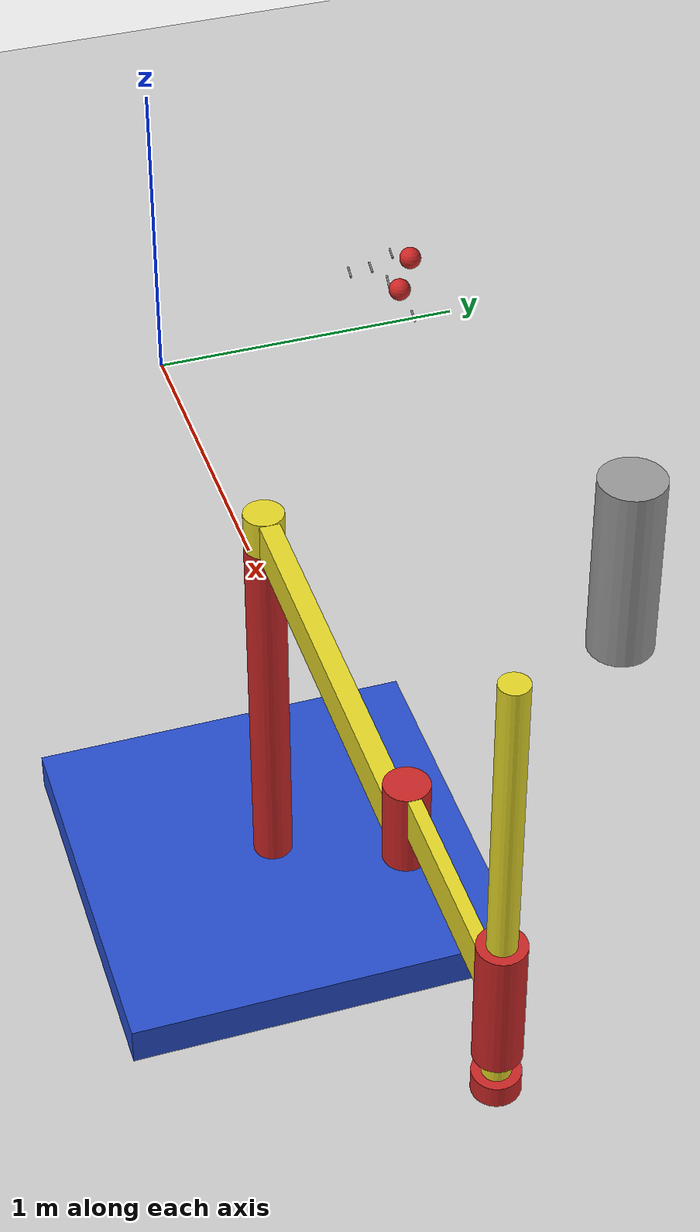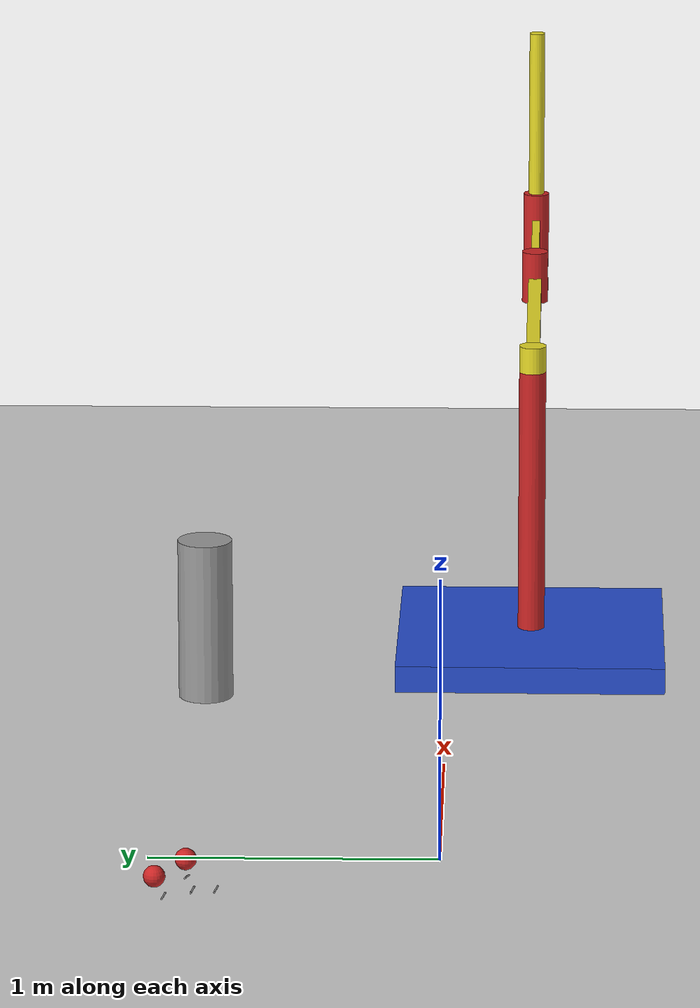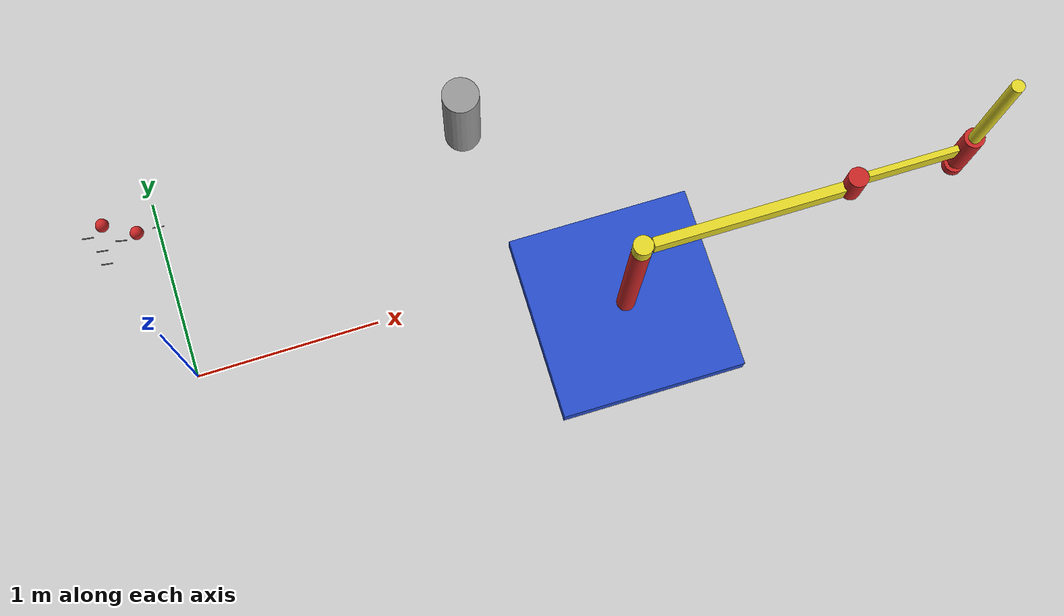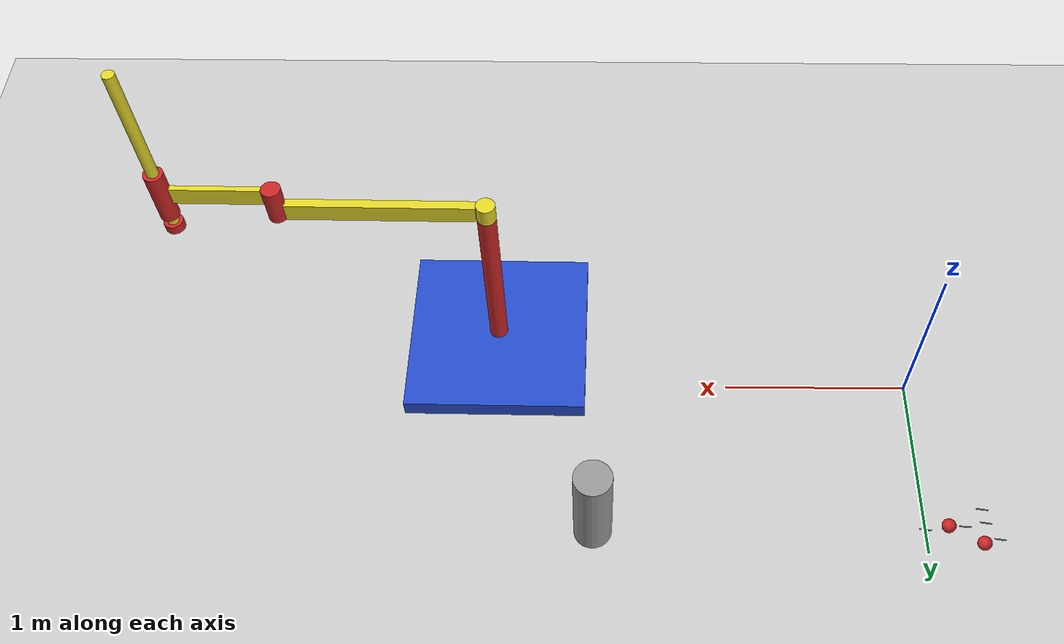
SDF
<sdf version="1.7">
 <world name="default">
  <light name="sun" type="directional">
   <pose>0 0 10 0 -0 0</pose>
   <diffuse>0.8 0.8 0.8 1</diffuse>
   <specular>0.2 0.2 0.2 1</specular>
   <attenuation>
    <range>1000</range>
    <constant>0.9</constant>
    <linear>0.01</linear>
    <quadratic>0.001</quadratic>
   </attenuation>
   <direction>-0.5 0.1 -0.9</direction>
   <spot><inner_angle>0</inner_angle><outer_angle>0</outer_angle><falloff>0</falloff></spot>
  </light>
  <model name="ground_plane">
   <static>1</static>
   <link name="link">
    <collision name="collision">
     <geometry><plane><normal>0 0 1</normal><size>100 100</size></plane></geometry>
     <surface><friction><ode><mu>100</mu><mu2>50</mu2></ode></friction></surface>
    </collision>
    <visual name="visual">
     <cast_shadows>0</cast_shadows>
     <geometry><plane><normal>0 0 1</normal><size>100 100</size></plane></geometry>
     <material>
      <script><uri>file://media/materials/scripts/gazebo.material</uri><name>Gazebo/Grey</name></script>
     </material>
    </visual>
   </link>
  </model>
  <gravity>0 0 -9.8</gravity>
  <magnetic_field>6e-06 2.3e-05 -4.2e-05</magnetic_field>
  <atmosphere type="adiabatic"/>
  <physics type="ode">
   <max_step_size>0.001</max_step_size>
   <real_time_factor>1</real_time_factor>
   <real_time_update_rate>1000</real_time_update_rate>
  </physics>
  <scene><ambient>0.4 0.4 0.4 1</ambient><background>0.7 0.7 0.7 1</background><shadows>1</shadows></scene>
  <audio><device>default</device></audio>
  <spherical_coordinates>
   <surface_model>EARTH_WGS84</surface_model>
   <latitude_deg>0</latitude_deg>
   <longitude_deg>0</longitude_deg>
   <elevation>0</elevation>
   <heading_deg>0</heading_deg>
  </spherical_coordinates>
  <model name="cricket_ball">
   <link name="link">
    <pose>0 0 0.0375 0 -0 0</pose>
    <inertial>
     <mass>0.1467</mass>
     <inertia>
      <ixx>8.25187e-05</ixx>
      <ixy>0</ixy>
      <ixz>0</ixz>
      <iyy>8.25187e-05</iyy>
      <iyz>0</iyz>
      <izz>8.25187e-05</izz>
     </inertia>
    </inertial>
    <collision name="collision">
     <geometry><sphere><radius>0.0375</radius></sphere></geometry>
     <surface>
      <contact>
       <poissons_ratio>0.347</poissons_ratio>
       <elastic_modulus>8.8e+09</elastic_modulus>
       <ode><kp>100000</kp><kd>100</kd><max_vel>100</max_vel><min_depth>0.001</min_depth></ode>
      </contact>
      <friction>
       <torsional>
        <coefficient>1</coefficient>
        <use_patch_radius>0</use_patch_radius>
        <surface_radius>0.01</surface_radius>
       </torsional>
      </friction>
     </surface>
    </collision>
    <visual name="visual">
     <geometry><sphere><radius>0.0375</radius></sphere></geometry>
     <material>
      <script><uri>file://media/materials/scripts/gazebo.material</uri><name>Gazebo/Red</name></script>
     </material>
    </visual>
    <velocity_decay><linear>0</linear><angular>0.005</angular></velocity_decay>
   </link>
   <pose>-0.122777 0.864227 0.00437 0.057605 0.131183 -0.011294</pose>
  </model>
  <model name="cricket_ball_clone">
   <link name="link">
    <pose>0 0 0.0375 0 -0 0</pose>
    <inertial>
     <mass>0.1467</mass>
     <inertia>
      <ixx>8.25187e-05</ixx>
      <ixy>0</ixy>
      <ixz>0</ixz>
      <iyy>8.25187e-05</iyy>
      <iyz>0</iyz>
      <izz>8.25187e-05</izz>
     </inertia>
    </inertial>
    <collision name="collision">
     <geometry><sphere><radius>0.0375</radius></sphere></geometry>
     <surface>
      <contact>
       <poissons_ratio>0.347</poissons_ratio>
       <elastic_modulus>8.8e+09</elastic_modulus>
       <ode><kp>100000</kp><kd>100</kd><max_vel>100</max_vel><min_depth>0.001</min_depth></ode>
      </contact>
      <friction>
       <torsional>
        <coefficient>1</coefficient>
        <use_patch_radius>0</use_patch_radius>
        <surface_radius>0.01</surface_radius>
       </torsional>
      </friction>
     </surface>
    </collision>
    <visual name="visual">
     <geometry><sphere><radius>0.0375</radius></sphere></geometry>
     <material>
      <script><uri>file://media/materials/scripts/gazebo.material</uri><name>Gazebo/Red</name></script>
     </material>
    </visual>
    <velocity_decay><linear>0</linear><angular>0.005</angular></velocity_decay>
   </link>
   <pose>-0.289198 0.958912 0.003986 0 -0 0</pose>
  </model>
  <model name="simple_arm">
   <link name="arm_base">
    <inertial>
     <pose>0 0 0.00099 0 -0 0</pose>
     <inertia><ixx>1.11</ixx><ixy>0</ixy><ixz>0</ixz><iyy>100.11</iyy><iyz>0</iyz><izz>1.01</izz></inertia>
     <mass>101</mass>
    </inertial>
    <collision name="arm_base_geom">
     <pose>0 0 0.05 0 -0 0</pose>
     <geometry><box><size>1 1 0.1</size></box></geometry>
    </collision>
    <visual name="arm_base_geom_visual">
     <pose>0 0 0.05 0 -0 0</pose>
     <geometry><box><size>1 1 0.1</size></box></geometry>
     <material>
      <script><uri>file://media/materials/scripts/gazebo.material</uri><name>Gazebo/Blue</name></script>
     </material>
    </visual>
    <collision name="arm_base_geom_arm_trunk">
     <pose>0 0 0.6 0 -0 0</pose>
     <geometry><cylinder><radius>0.05</radius><length>1</length></cylinder></geometry>
    </collision>
    <visual name="arm_base_geom_arm_trunk_visual">
     <pose>0 0 0.6 0 -0 0</pose>
     <geometry><cylinder><radius>0.05</radius><length>1</length></cylinder></geometry>
     <material>
      <script><uri>file://media/materials/scripts/gazebo.material</uri><name>Gazebo/Red</name></script>
     </material>
    </visual>
   </link>
   <link name="arm_shoulder_pan">
    <pose>0 0 1.1 0 -0 0</pose>
    <inertial>
     <pose>0.045455 0 0 0 -0 0</pose>
     <inertia><ixx>0.011</ixx><ixy>0</ixy><ixz>0</ixz><iyy>0.0225</iyy><iyz>0</iyz><izz>0.0135</izz></inertia>
     <mass>1.1</mass>
    </inertial>
    <collision name="arm_shoulder_pan_geom">
     <pose>0 0 0.05 0 -0 0</pose>
     <geometry><cylinder><radius>0.05</radius><length>0.1</length></cylinder></geometry>
    </collision>
    <visual name="arm_shoulder_pan_geom_visual">
     <pose>0 0 0.05 0 -0 0</pose>
     <geometry><cylinder><radius>0.05</radius><length>0.1</length></cylinder></geometry>
     <material>
      <script><uri>file://media/materials/scripts/gazebo.material</uri><name>Gazebo/Yellow</name></script>
     </material>
    </visual>
    <collision name="arm_shoulder_pan_geom_arm_shoulder">
     <pose>0.55 0 0.05 0 -0 0</pose>
     <geometry><box><size>1 0.05 0.1</size></box></geometry>
    </collision>
    <visual name="arm_shoulder_pan_geom_arm_shoulder_visual">
     <pose>0.55 0 0.05 0 -0 0</pose>
     <geometry><box><size>1 0.05 0.1</size></box></geometry>
     <material>
      <script><uri>file://media/materials/scripts/gazebo.material</uri><name>Gazebo/Yellow</name></script>
     </material>
    </visual>
   </link>
   <link name="arm_elbow_pan">
    <pose>1.05 0 1.1 0 -0 0</pose>
    <inertial>
     <pose>0.0875 0 0.083333 0 -0 0</pose>
     <inertia>
      <ixx>0.031</ixx>
      <ixy>0</ixy>
      <ixz>0.005</ixz>
      <iyy>0.07275</iyy>
      <iyz>0</iyz>
      <izz>0.04475</izz>
     </inertia>
     <mass>1.2</mass>
    </inertial>
    <collision name="arm_elbow_pan_geom">
     <pose>0 0 0.1 0 -0 0</pose>
     <geometry><cylinder><radius>0.05</radius><length>0.2</length></cylinder></geometry>
    </collision>
    <visual name="arm_elbow_pan_geom_visual">
     <pose>0 0 0.1 0 -0 0</pose>
     <geometry><cylinder><radius>0.05</radius><length>0.2</length></cylinder></geometry>
     <material>
      <script><uri>file://media/materials/scripts/gazebo.material</uri><name>Gazebo/Red</name></script>
     </material>
    </visual>
    <collision name="arm_elbow_pan_geom_arm_elbow">
     <pose>0.3 0 0.15 0 -0 0</pose>
     <geometry><box><size>0.5 0.03 0.1</size></box></geometry>
    </collision>
    <visual name="arm_elbow_pan_geom_arm_elbow_visual">
     <pose>0.3 0 0.15 0 -0 0</pose>
     <geometry><box><size>0.5 0.03 0.1</size></box></geometry>
     <material>
      <script><uri>file://media/materials/scripts/gazebo.material</uri><name>Gazebo/Yellow</name></script>
     </material>
    </visual>
    <collision name="arm_elbow_pan_geom_arm_wrist">
     <pose>0.55 0 0.15 0 -0 0</pose>
     <geometry><cylinder><radius>0.05</radius><length>0.3</length></cylinder></geometry>
    </collision>
    <visual name="arm_elbow_pan_geom_arm_wrist_visual">
     <pose>0.55 0 0.15 0 -0 0</pose>
     <geometry><cylinder><radius>0.05</radius><length>0.3</length></cylinder></geometry>
     <material>
      <script><uri>file://media/materials/scripts/gazebo.material</uri><name>Gazebo/Red</name></script>
     </material>
    </visual>
   </link>
   <link name="arm_wrist_lift">
    <pose>1.6 0 1.05 0 -0 0</pose>
    <inertial>
     <inertia><ixx>0.01</ixx><ixy>0</ixy><ixz>0</ixz><iyy>0.01</iyy><iyz>0</iyz><izz>0.001</izz></inertia>
     <mass>0.1</mass>
    </inertial>
    <collision name="arm_wrist_lift_geom">
     <pose>0 0 0.5 0 -0 0</pose>
     <geometry><cylinder><radius>0.03</radius><length>1</length></cylinder></geometry>
    </collision>
    <visual name="arm_wrist_lift_geom_visual">
     <pose>0 0 0.5 0 -0 0</pose>
     <geometry><cylinder><radius>0.03</radius><length>1</length></cylinder></geometry>
     <material>
      <script><uri>file://media/materials/scripts/gazebo.material</uri><name>Gazebo/Yellow</name></script>
     </material>
    </visual>
   </link>
   <link name="arm_wrist_roll">
    <pose>1.6 0 1 0 -0 0</pose>
    <inertial>
     <inertia><ixx>0.01</ixx><ixy>0</ixy><ixz>0</ixz><iyy>0.01</iyy><iyz>0</iyz><izz>0.001</izz></inertia>
     <mass>0.1</mass>
    </inertial>
    <collision name="arm_wrist_roll_geom">
     <pose>0 0 0.025 0 -0 0</pose>
     <geometry><cylinder><radius>0.05</radius><length>0.05</length></cylinder></geometry>
    </collision>
    <visual name="arm_wrist_roll_geom_visual">
     <pose>0 0 0.025 0 -0 0</pose>
     <geometry><cylinder><radius>0.05</radius><length>0.05</length></cylinder></geometry>
     <material>
      <script><uri>file://media/materials/scripts/gazebo.material</uri><name>Gazebo/Red</name></script>
     </material>
    </visual>
   </link>
   <joint name="arm_shoulder_pan_joint" type="revolute">
    <parent>arm_base</parent>
    <child>arm_shoulder_pan</child>
    <axis>
     <dynamics>
      <damping>1</damping>
      <friction>0</friction>
      <spring_reference>0</spring_reference>
      <spring_stiffness>0</spring_stiffness>
     </dynamics>
     <xyz expressed_in="__model__">0 0 1</xyz>
     <limit><lower>-1e+16</lower><upper>1e+16</upper></limit>
    </axis>
   </joint>
   <joint name="arm_elbow_pan_joint" type="revolute">
    <parent>arm_shoulder_pan</parent>
    <child>arm_elbow_pan</child>
    <axis>
     <dynamics>
      <damping>1</damping>
      <friction>0</friction>
      <spring_reference>0</spring_reference>
      <spring_stiffness>0</spring_stiffness>
     </dynamics>
     <xyz expressed_in="__model__">0 0 1</xyz>
     <limit><lower>-1e+16</lower><upper>1e+16</upper></limit>
    </axis>
   </joint>
   <joint name="arm_wrist_lift_joint" type="prismatic">
    <parent>arm_elbow_pan</parent>
    <child>arm_wrist_lift</child>
    <axis>
     <dynamics>
      <damping>1</damping>
      <friction>0</friction>
      <spring_reference>0</spring_reference>
      <spring_stiffness>0</spring_stiffness>
     </dynamics>
     <limit><lower>-0.8</lower><upper>0.1</upper></limit>
     <xyz expressed_in="__model__">0 0 1</xyz>
    </axis>
   </joint>
   <joint name="arm_wrist_roll_joint" type="revolute">
    <parent>arm_wrist_lift</parent>
    <child>arm_wrist_roll</child>
    <axis>
     <dynamics>
      <damping>1</damping>
      <friction>0</friction>
      <spring_reference>0</spring_reference>
      <spring_stiffness>0</spring_stiffness>
     </dynamics>
     <limit><lower>-2.99999</lower><upper>2.99999</upper></limit>
     <xyz expressed_in="__model__">0 0 1</xyz>
    </axis>
   </joint>
   <pose>2.29434 -0.31059 0.004945 -0.000113 2e-06 -0.009006</pose>
  </model>
  <model name="metal_peg">
   <link name="link">
    <pose>0 0 0.031 0 -0 0</pose>
    <inertial>
     <mass>0.0121</mass>
     <inertia>
      <ixx>3.90898e-06</ixx>
      <ixy>0</ixy>
      <ixz>0</ixz>
      <iyy>3.90898e-06</iyy>
      <iyz>0</iyz>
      <izz>6.58845e-08</izz>
     </inertia>
    </inertial>
    <collision name="collision">
     <geometry><cylinder><radius>0.0033</radius><length>0.062</length></cylinder></geometry>
     <surface>
      <contact>
       <poissons_ratio>0.305</poissons_ratio>
       <elastic_modulus>2e+11</elastic_modulus>
       <ode><kp>100000</kp><kd>100</kd><max_vel>100</max_vel><min_depth>0.001</min_depth></ode>
      </contact>
      <friction>
       <torsional>
        <coefficient>1</coefficient>
        <use_patch_radius>0</use_patch_radius>
        <surface_radius>0.01</surface_radius>
       </torsional>
      </friction>
     </surface>
    </collision>
    <visual name="visual">
     <geometry><cylinder><radius>0.0033</radius><length>0.062</length></cylinder></geometry>
     <material>
      <script><uri>file://media/materials/scripts/gazebo.material</uri><name>Gazebo/Grey</name></script>
     </material>
    </visual>
   </link>
   <pose>0.02984 0.866349 0.007297 1.41795 -1.31737 -1.54887</pose>
  </model>
  <model name="metal_peg_0">
   <link name="link">
    <pose>0 0 0.031 0 -0 0</pose>
    <inertial>
     <mass>0.0121</mass>
     <inertia>
      <ixx>3.90898e-06</ixx>
      <ixy>0</ixy>
      <ixz>0</ixz>
      <iyy>3.90898e-06</iyy>
      <iyz>0</iyz>
      <izz>6.58845e-08</izz>
     </inertia>
    </inertial>
    <collision name="collision">
     <geometry><cylinder><radius>0.0033</radius><length>0.062</length></cylinder></geometry>
     <surface>
      <contact>
       <poissons_ratio>0.305</poissons_ratio>
       <elastic_modulus>2e+11</elastic_modulus>
       <ode><kp>100000</kp><kd>100</kd><max_vel>100</max_vel><min_depth>0.001</min_depth></ode>
      </contact>
      <friction>
       <torsional>
        <coefficient>1</coefficient>
        <use_patch_radius>0</use_patch_radius>
        <surface_radius>0.01</surface_radius>
       </torsional>
      </friction>
     </surface>
    </collision>
    <visual name="visual">
     <geometry><cylinder><radius>0.0033</radius><length>0.062</length></cylinder></geometry>
     <material>
      <script><uri>file://media/materials/scripts/gazebo.material</uri><name>Gazebo/Grey</name></script>
     </material>
    </visual>
   </link>
   <pose>-0.295231 0.823922 0.007299 -1.5708 -1.39301 1.42608</pose>
  </model>
  <model name="metal_peg_1">
   <link name="link">
    <pose>0 0 0.031 0 -0 0</pose>
    <inertial>
     <mass>0.0121</mass>
     <inertia>
      <ixx>3.90898e-06</ixx>
      <ixy>0</ixy>
      <ixz>0</ixz>
      <iyy>3.90898e-06</iyy>
      <iyz>0</iyz>
      <izz>6.58845e-08</izz>
     </inertia>
    </inertial>
    <collision name="collision">
     <geometry><cylinder><radius>0.0033</radius><length>0.062</length></cylinder></geometry>
     <surface>
      <contact>
       <poissons_ratio>0.305</poissons_ratio>
       <elastic_modulus>2e+11</elastic_modulus>
       <ode><kp>100000</kp><kd>100</kd><max_vel>100</max_vel><min_depth>0.001</min_depth></ode>
      </contact>
      <friction>
       <torsional>
        <coefficient>1</coefficient>
        <use_patch_radius>0</use_patch_radius>
        <surface_radius>0.01</surface_radius>
       </torsional>
      </friction>
     </surface>
    </collision>
    <visual name="visual">
     <geometry><cylinder><radius>0.0033</radius><length>0.062</length></cylinder></geometry>
     <material>
      <script><uri>file://media/materials/scripts/gazebo.material</uri><name>Gazebo/Grey</name></script>
     </material>
    </visual>
   </link>
   <pose>-0.288125 0.745057 0.007299 -1.5708 -1.39301 1.42608</pose>
  </model>
  <model name="metal_peg_2">
   <link name="link">
    <pose>0 0 0.031 0 -0 0</pose>
    <inertial>
     <mass>0.0121</mass>
     <inertia>
      <ixx>3.90898e-06</ixx>
      <ixy>0</ixy>
      <ixz>0</ixz>
      <iyy>3.90898e-06</iyy>
      <iyz>0</iyz>
      <izz>6.58845e-08</izz>
     </inertia>
    </inertial>
    <collision name="collision">
     <geometry><cylinder><radius>0.0033</radius><length>0.062</length></cylinder></geometry>
     <surface>
      <contact>
       <poissons_ratio>0.305</poissons_ratio>
       <elastic_modulus>2e+11</elastic_modulus>
       <ode><kp>100000</kp><kd>100</kd><max_vel>100</max_vel><min_depth>0.001</min_depth></ode>
      </contact>
      <friction>
       <torsional>
        <coefficient>1</coefficient>
        <use_patch_radius>0</use_patch_radius>
        <surface_radius>0.01</surface_radius>
       </torsional>
      </friction>
     </surface>
    </collision>
    <visual name="visual">
     <geometry><cylinder><radius>0.0033</radius><length>0.062</length></cylinder></geometry>
     <material>
      <script><uri>file://media/materials/scripts/gazebo.material</uri><name>Gazebo/Grey</name></script>
     </material>
    </visual>
   </link>
   <pose>-0.354841 0.917778 0.007299 -1.5708 -1.39301 1.42608</pose>
  </model>
  <model name="metal_peg_3">
   <link name="link">
    <pose>0 0 0.031 0 -0 0</pose>
    <inertial>
     <mass>0.0121</mass>
     <inertia>
      <ixx>3.90898e-06</ixx>
      <ixy>0</ixy>
      <ixz>0</ixz>
      <iyy>3.90898e-06</iyy>
      <iyz>0</iyz>
      <izz>6.58845e-08</izz>
     </inertia>
    </inertial>
    <collision name="collision">
     <geometry><cylinder><radius>0.0033</radius><length>0.062</length></cylinder></geometry>
     <surface>
      <contact>
       <poissons_ratio>0.305</poissons_ratio>
       <elastic_modulus>2e+11</elastic_modulus>
       <ode><kp>100000</kp><kd>100</kd><max_vel>100</max_vel><min_depth>0.001</min_depth></ode>
      </contact>
      <friction>
       <torsional>
        <coefficient>1</coefficient>
        <use_patch_radius>0</use_patch_radius>
        <surface_radius>0.01</surface_radius>
       </torsional>
      </friction>
     </surface>
    </collision>
    <visual name="visual">
     <geometry><cylinder><radius>0.0033</radius><length>0.062</length></cylinder></geometry>
     <material>
      <script><uri>file://media/materials/scripts/gazebo.material</uri><name>Gazebo/Grey</name></script>
     </material>
    </visual>
   </link>
   <pose>-0.18403 0.848291 0.007242 -1.28455 -0.851519 1.1862</pose>
  </model>
  <model name="unit_cylinder">
   <link name="link">
    <inertial>
     <mass>1</mass>
     <inertia><ixx>0.145833</ixx><ixy>0</ixy><ixz>0</ixz><iyy>0.145833</iyy><iyz>0</iyz><izz>0.125</izz></inertia>
    </inertial>
    <visual name="visual">
     <geometry><cylinder><radius>0.1</radius><length>0.6</length></cylinder></geometry>
     <material>
      <script><name>Gazebo/Grey</name><uri>file://media/materials/scripts/gazebo.material</uri></script>
      <shader type="pixel"><normal_map>__default__</normal_map></shader>
      <ambient>0.3 0.3 0.3 1</ambient>
      <diffuse>0.7 0.7 0.7 1</diffuse>
      <specular>0.01 0.01 0.01 1</specular>
      <emissive>0 0 0 1</emissive>
     </material>
    </visual>
    <collision name="collision">
     <geometry><cylinder><radius>0.5</radius><length>1</length></cylinder></geometry>
     <surface>
      <friction>
       <ode><mu>1</mu><mu2>1</mu2><fdir1>0 0 0</fdir1><slip1>0</slip1><slip2>0</slip2></ode>
       <torsional>
        <coefficient>1</coefficient>
        <patch_radius>0</patch_radius>
        <surface_radius>0</surface_radius>
        <use_patch_radius>1</use_patch_radius>
        <ode><slip>0</slip></ode>
       </torsional>
      </friction>
      <bounce><restitution_coefficient>0</restitution_coefficient><threshold>1e+06</threshold></bounce>
      <contact>
       <collide_without_contact>0</collide_without_contact>
       <collide_without_contact_bitmask>1</collide_without_contact_bitmask>
       <collide_bitmask>1</collide_bitmask>
       <ode>
        <soft_cfm>0</soft_cfm>
        <soft_erp>0.2</soft_erp>
        <kp>1e+13</kp>
        <kd>1</kd>
        <max_vel>0.01</max_vel>
        <min_depth>0</min_depth>
       </ode>
       <bullet>
        <split_impulse>1</split_impulse>
        <split_impulse_penetration_threshold>-0.01</split_impulse_penetration_threshold>
        <soft_cfm>0</soft_cfm>
        <soft_erp>0.2</soft_erp>
        <kp>1e+13</kp>
        <kd>1</kd>
       </bullet>
      </contact>
     </surface>
    </collision>
   </link>
   <static>0</static>
   <pose>1.74793 0.891136 0.306161 0 -0 0</pose>
  </model>
 </world>
</sdf>
